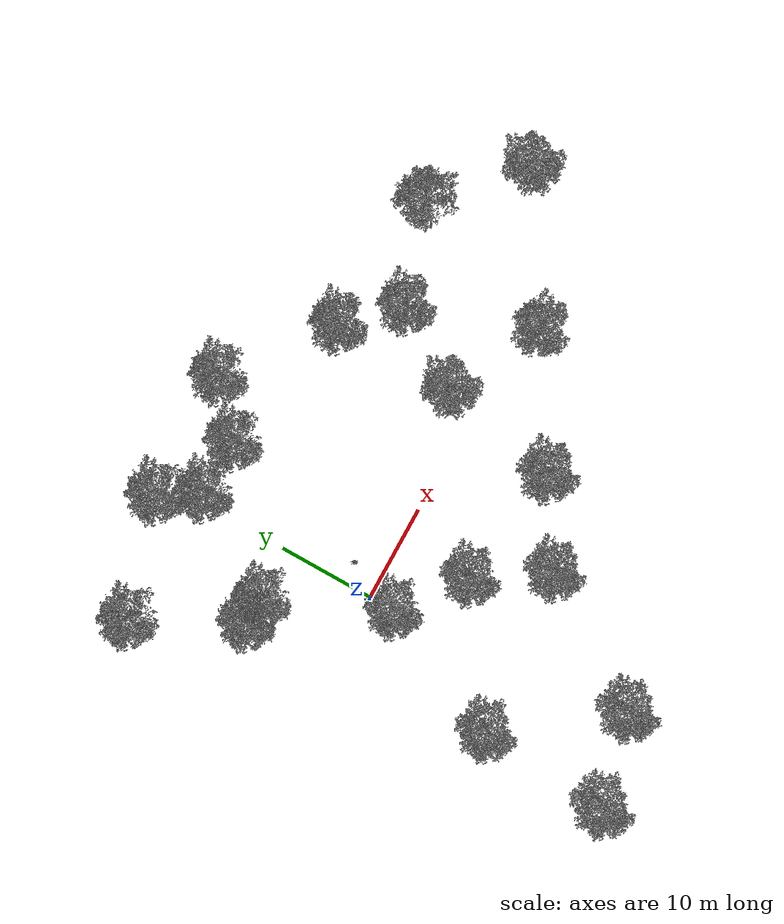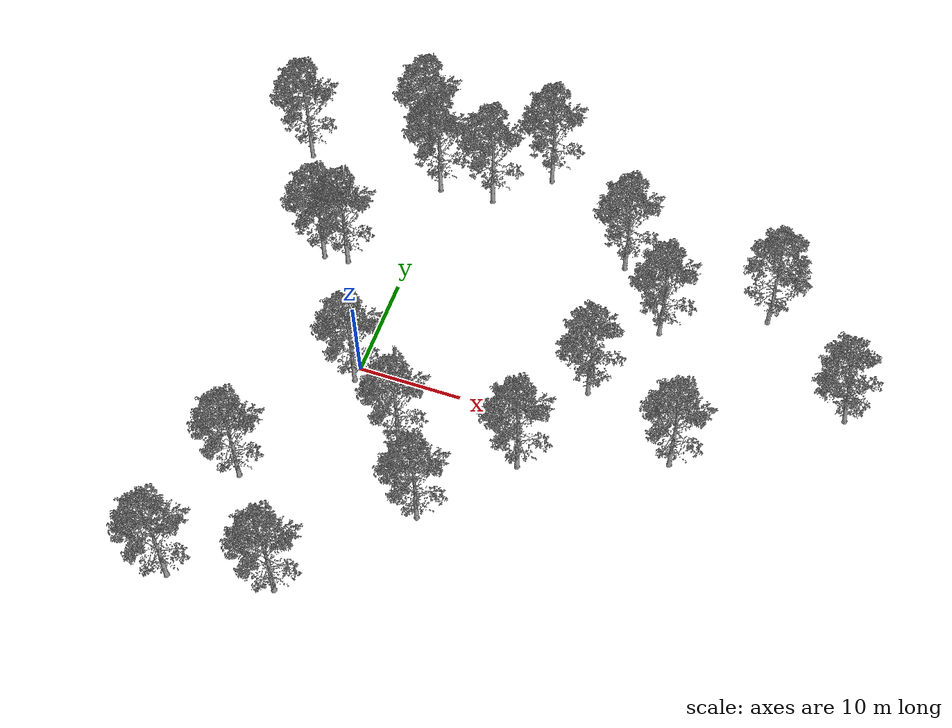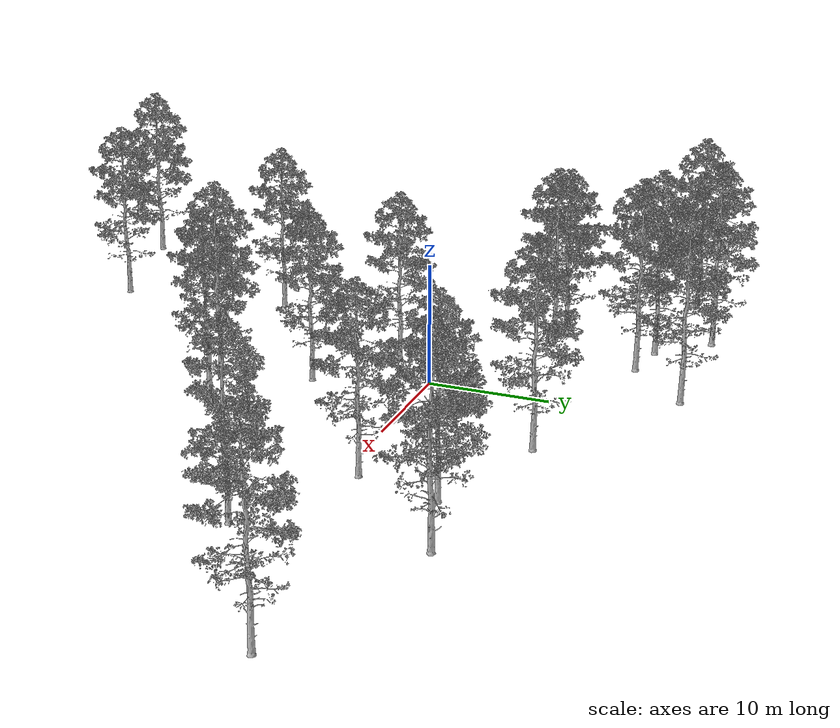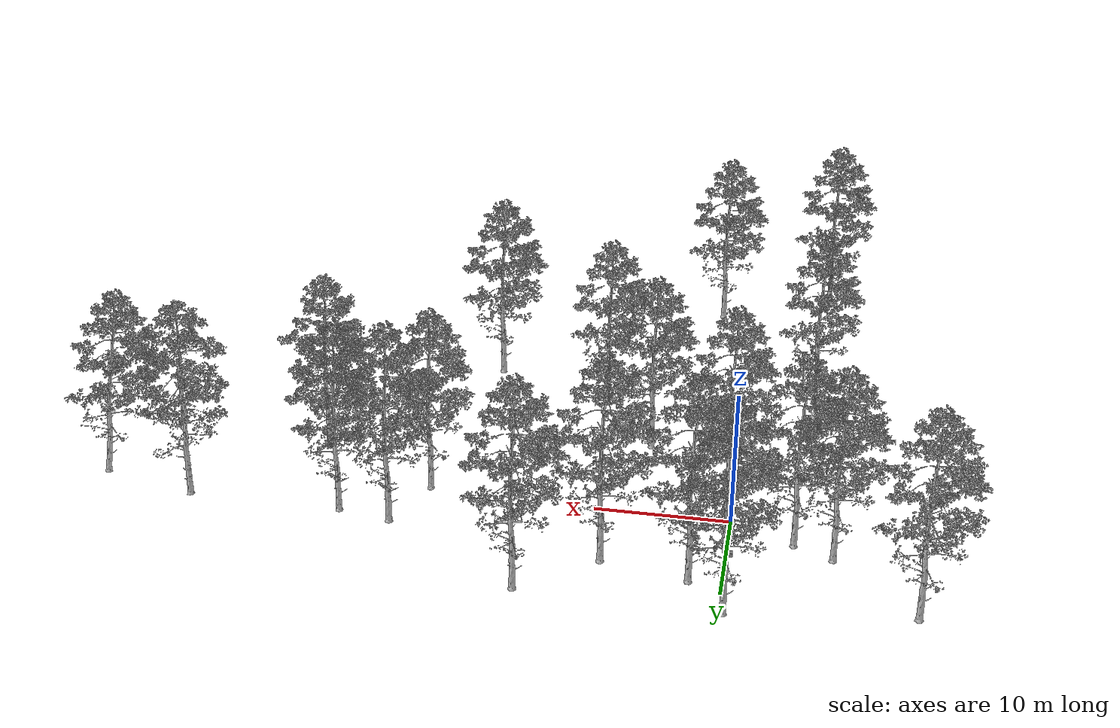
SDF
<sdf version="1.8">
 <world name="terrain_forest">
  <physics name="4ms" type="ignored">
   <max_step_size>0.004</max_step_size>
   <real_time_factor>1.0</real_time_factor>
   <dart>
    <collision_detector>bullet</collision_detector>
    <solver><solver_type>pgs</solver_type><num_iterations>15</num_iterations></solver>
   </dart>
  </physics>
  <plugin filename="ignition-gazebo-physics-system" name="ignition::gazebo::systems::Physics"/>
  <plugin filename="ignition-gazebo-sensors-system" name="ignition::gazebo::systems::Sensors">
   <render_engine>ogre2</render_engine>
  </plugin>
  <plugin filename="ignition-gazebo-scene-broadcaster-system" name="ignition::gazebo::systems::SceneBroadcaster"/>
  <plugin filename="ignition-gazebo-user-commands-system" name="ignition::gazebo::systems::UserCommands"/>
  <plugin filename="libignition-gazebo-imu-system.so" name="ignition::gazebo::systems::Imu"/>
  <plugin name="comms_emulator_helper_system::CommsEmulatorHelper" filename="CommsEmulatorHelper"/>
  <light name="sun" type="directional">
   <pose>0 0 10 0 0 0</pose>
   <diffuse>0.8 0.8 0.8 1</diffuse>
   <specular>0.2 0.2 0.2 1</specular>
   <attenuation>
    <range>1000</range>
    <constant>0.9</constant>
    <linear>0.01</linear>
    <quadratic>0.001</quadratic>
   </attenuation>
   <direction>-0.5 0.1 -0.9</direction>
  </light>
  <include><uri>model://terrain_forest</uri><name>my_map</name><pose>0 0 -2.62235 0 -0 0</pose></include>
  <include>
   <uri>model://pinus_pinaster</uri>
   <name>my_pinus_pinaster</name>
   <pose>7 18.2417 6.48795 0 -0 0</pose>
  </include>
  <include><uri>model://lavander</uri><name>my_lavander</name><pose>2 3 0 0 -0 0</pose></include>
  <include>
   <uri>model://pinus_pinaster</uri>
   <name>my_pinus_pinaster_1</name>
   <pose>11.6498 22.4133 6.48795 0 -0 0</pose>
  </include>
  <include>
   <uri>model://pinus_pinaster</uri>
   <name>my_pinus_pinaster_2</name>
   <pose>-5.88713 -27.6964 6.48795 0 -0 0</pose>
  </include>
  <include>
   <uri>model://pinus_pinaster</uri>
   <name>my_pinus_pinaster_3</name>
   <pose>2.87152 -25.7165 5.49625 0 -0 0</pose>
  </include>
  <include>
   <uri>model://pinus_pinaster</uri>
   <name>my_pinus_pinaster_4</name>
   <pose>-5.25035 -15.4343 2.84575 0 -0 0</pose>
  </include>
  <include>
   <uri>model://pinus_pinaster</uri>
   <name>my_pinus_pinaster_5</name>
   <pose>0.514878 -2.34477 1.85734 0 -0 0</pose>
  </include>
  <include>
   <uri>model://pinus_pinaster</uri>
   <name>my_pinus_pinaster_6</name>
   <pose>-4.54535 8.97084 3.59185 0 -0 0</pose>
  </include>
  <include>
   <uri>model://pinus_pinaster</uri>
   <name>my_pinus_pinaster_7</name>
   <pose>21.2545 15.0805 5.95974 0 -0 0</pose>
  </include>
  <include>
   <uri>model://pinus_pinaster</uri>
   <name>my_pinus_pinaster_8</name>
   <pose>11.0096 -13.9011 1.97495 0 -0 0</pose>
  </include>
  <include>
   <uri>model://pinus_pinaster</uri>
   <name>my_pinus_pinaster_9</name>
   <pose>6.72709 -7.19177 1.7893 0 -0 0</pose>
  </include>
  <include>
   <uri>model://pinus_pinaster</uri>
   <name>my_pinus_pinaster_10</name>
   <pose>18.5307 -8.57356 6.48795 0 -0 0</pose>
  </include>
  <include>
   <uri>model://pinus_pinaster</uri>
   <name>my_pinus_pinaster_11</name>
   <pose>21.4964 3.15272 2.08213 0 -0 0.436103</pose>
  </include>
  <include>
   <uri>model://pinus_pinaster</uri>
   <name>my_pinus_pinaster_12</name>
   <pose>26.1018 10.5035 3.76162 0 -0 0</pose>
  </include>
  <include>
   <uri>model://pinus_pinaster</uri>
   <name>my_pinus_pinaster_13</name>
   <pose>35.463 13.6367 5.6958 0 0 -1.19676</pose>
  </include>
  <include>
   <uri>model://pinus_pinaster</uri>
   <name>my_pinus_pinaster_14</name>
   <pose>44.5831 7.1589 3.11225 -0 -0.117333 0.561469</pose>
  </include>
  <include>
   <uri>model://pinus_pinaster</uri>
   <name>my_pinus_pinaster_15</name>
   <pose>30.6427 -1.71565 2.15145 0 0 -0.336636</pose>
  </include>
  <include>
   <uri>model://pinus_pinaster</uri>
   <name>my_pinus_pinaster_16</name>
   <pose>1.56649 18.4228 5.79553 0 -0 0</pose>
  </include>
  <include>
   <uri>model://pinus_pinaster</uri>
   <name>my_pinus_pinaster_17</name>
   <pose>-0.789834 22.1788 6.17642 0 -0 0</pose>
  </include>
  <include>
   <uri>model://pinus_pinaster</uri>
   <name>my_pinus_pinaster_18</name>
   <pose>-12.1566 18.9015 5.13423 0 -0 0</pose>
  </include>
  <include>
   <uri>model://pinus_pinaster</uri>
   <name>my_pinus_pinaster_19</name>
   <pose>-7.14512 9.22985 2.93354 0 -0 0</pose>
  </include>
  <spherical_coordinates>
   <surface_model>EARTH_WGS84</surface_model>
   <world_frame_orientation>ENU</world_frame_orientation>
   <latitude_deg>0.0</latitude_deg>
   <longitude_deg>0.0</longitude_deg>
   <elevation>0</elevation>
   <heading_deg>0</heading_deg>
  </spherical_coordinates>
 </world>
</sdf>

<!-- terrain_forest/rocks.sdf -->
<sdf version="1.9">
  <model name="rocks">
    <static>true</static>
    <link name="link">
      <collision name="collision">
        <geometry>
          <box>
            <size>0.5 0.5 0.3</size>
          </box>
        </geometry>
      </collision>
      <visual name="visual">
        <geometry>
          <box>
            <size>0.5 0.5 0.3</size>
          </box>
        </geometry>
        <material>
          <ambient>0.4 0.4 0.4 1</ambient>
          <diffuse>0.5 0.5 0.5 1</diffuse>
        </material>
      </visual>
    </link>
  </model>
</sdf>

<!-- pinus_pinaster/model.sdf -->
<sdf version="1.9">
  <model name="pinus_pinaster">
    <static>true</static>
    <link name="link">
      <visual name="visual">
        <geometry>
          <mesh>
            <uri>model://pinus_pinaster/meshes/Pinus_Pinaster.dae</uri>
          </mesh>
        </geometry>
      </visual>
      <collision name="collision">
        <geometry>
          <box>
            <size>1.2 1.2 10</size>
          </box>
        </geometry>
      </collision>
    </link>
  </model>
</sdf>

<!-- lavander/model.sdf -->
<sdf version="1.9">
  <model name="lavander">
    <static>true</static>
    <link name="link">
      <visual name="visual">
        <geometry>
          <mesh>
            <uri>model://lavander/meshes/lavander.dae</uri>
          </mesh>
        </geometry>
      </visual>
      <collision name="collision">
        <geometry>
          <box>
            <size>0.5 0.5 0.6</size>
          </box>
        </geometry>
      </collision>
    </link>
  </model>
</sdf>
